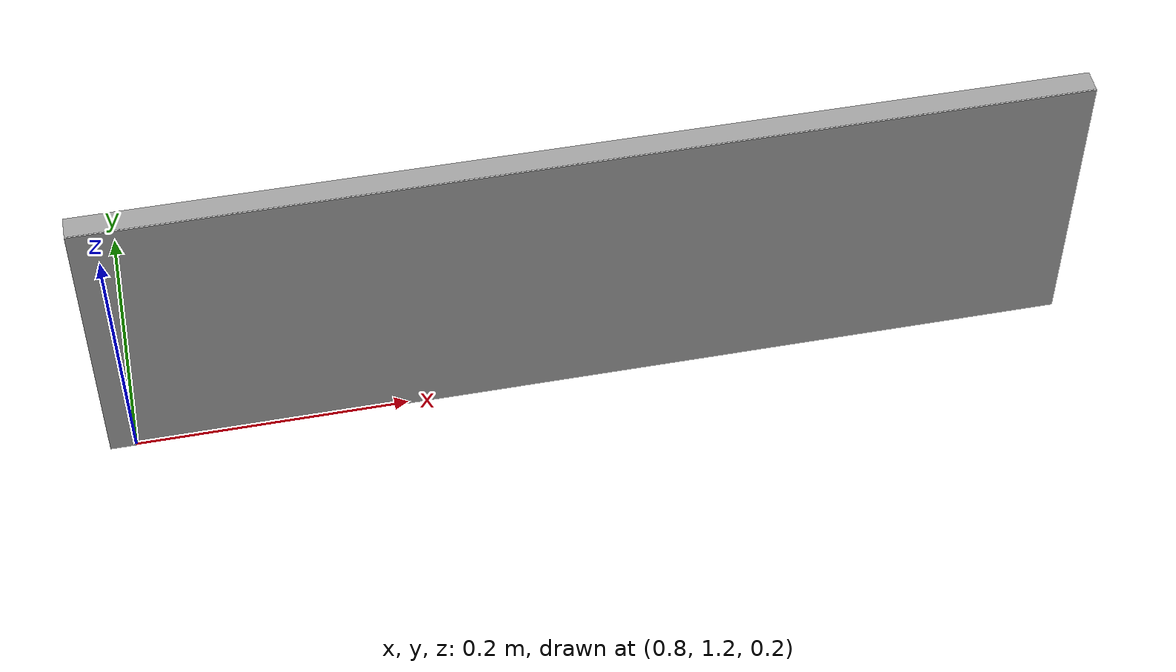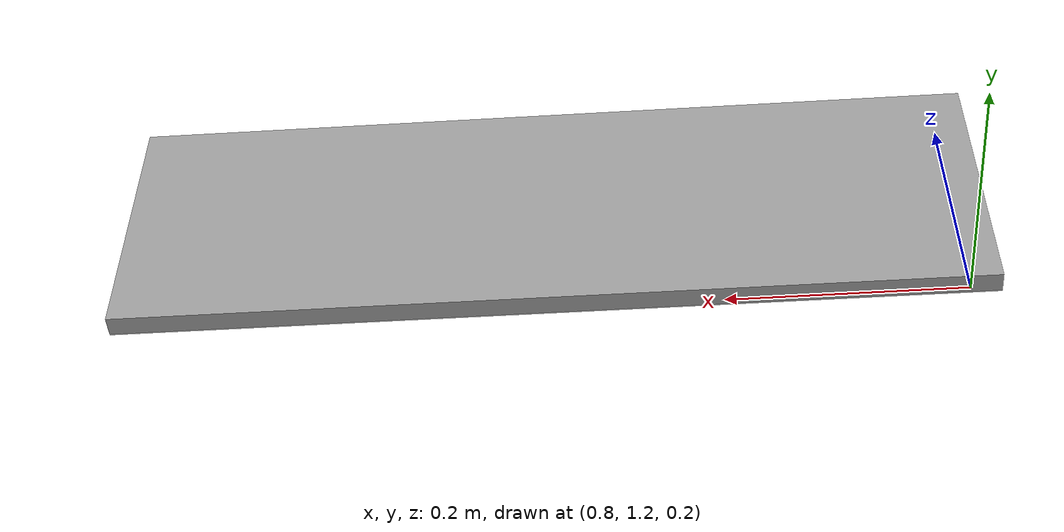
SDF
<?xml version='1.0'?>
<sdf version='1.7'>
  <model name='5'>
    <static>true</static>

    <pose>1.141040 1.223513 0.297706 0 0 3.141593</pose>

    <link name='link_3'>
      <pose>0 0 0 0 0 0</pose>

      <visual name='visual'>
        <geometry>
          <box>
            <size>0.723514 0.016796 0.235099</size>
          </box>
        </geometry>
        <material>
          <script>
            <uri>file://media/materials/scripts/gazebo.material</uri>
            <name>Gazebo/Grey</name>
          </script>
        </material>
      </visual>

      <visual name='signboard_visual'>
        <pose>0 0.009 0 0 0 0</pose>
        <geometry>
          <box>
            <size>0.723514 0.001 0.235099</size>
          </box>
        </geometry>
        <material>
          <script>
            <uri>model://5/materials/scripts</uri>
            <uri>model://5/materials/textures</uri>
            <name>Model_5/Texture</name>
          </script>
        </material>
      </visual>

    </link>
    <allow_auto_disable>1</allow_auto_disable>
  </model>
</sdf>
